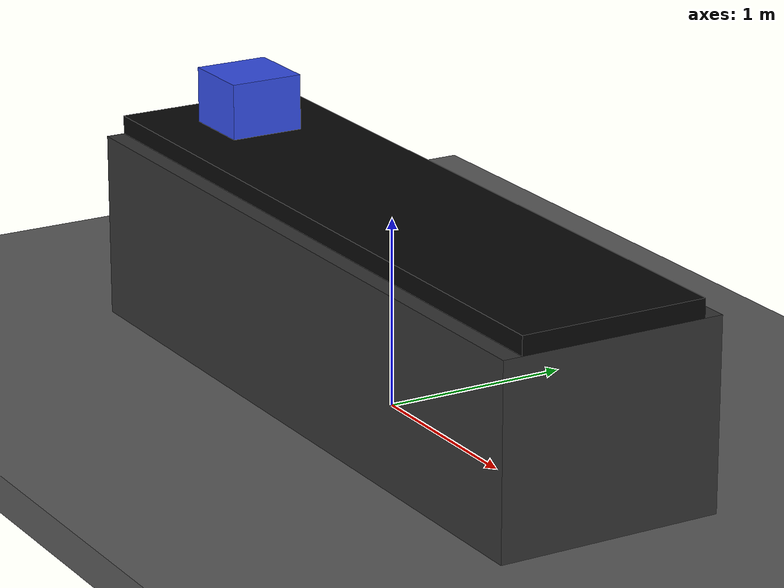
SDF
<?xml version="1.0"?>
<sdf version="1.9">
  <world name="virtual_factory">

    <!-- ============================================================
         PHYSICS
         ============================================================ -->

    <physics name="default_physics" type="ode">
      <max_step_size>0.001</max_step_size>
      <real_time_factor>1</real_time_factor>
      <real_time_update_rate>1000</real_time_update_rate>
    </physics>

    <!-- ============================================================
         LIGHTING
         ============================================================ -->

    <light
      name="sun"
      type="directional">

      <cast_shadows>true</cast_shadows>

      <pose>0 0 10 0 0 0</pose>

      <diffuse>0.8 0.8 0.8 1</diffuse>

      <specular>0.2 0.2 0.2 1</specular>

      <direction>-0.5 0.1 -0.9</direction>

    </light>

    <!-- ============================================================
         FACTORY FLOOR
         ============================================================ -->

    <model name="factory_floor">

      <!-- The factory floor does not move -->
      <static>true</static>

      <pose>0 0 0 0 0 0</pose>

      <link name="floor_link">

        <!-- ======================================================
             VISUAL
             What we see
             ====================================================== -->

        <visual name="floor_visual">

          <geometry>

            <box>
              <size>20 20 0.2</size>
            </box>

          </geometry>

	<material>
    <ambient>0.25 0.25 0.25 1</ambient>
    <diffuse>0.35 0.35 0.35 1</diffuse>
    <specular>0.1 0.1 0.1 1</specular>
  </material>

          <pose>0 0 -0.1 0 0 0</pose>

        </visual>

        <!-- ======================================================
             COLLISION
             What the physics engine sees
             ====================================================== -->

        <collision name="floor_collision">

          <geometry>

            <box>
              <size>20 20 0.2</size>
            </box>

          </geometry>

          <pose>0 0 -0.1 0 0 0</pose>

        </collision>

      </link>

    </model>

    <!-- ============================================================
         CONVEYOR CV-001
         ============================================================ -->

    <include>

      <uri>model://conveyor</uri>

      <name>CV-001</name>

      <pose>0 0 0 0 0 0</pose>

    </include>

<!-- =========================================================
     PRODUCT-001
     ========================================================= -->

<include>

  <uri>model://product</uri>

  <name>PRODUCT-001</name>

  <!--
    X = -1.5 m
    Y =  0 m
    Z =  1.25 m

    Product is near the conveyor start,
    centered across the belt,
    and sitting on top of it.
  -->

  <pose>-1.5 0 1.25 0 0 0</pose>

</include>

  </world>
</sdf>

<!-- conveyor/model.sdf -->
<sdf version="1.9">

  <!-- =========================================================
       CONVEYOR MODEL
       Equipment ID: CV-001
       ========================================================= -->

  <model name="CV-001">

<static>true</static>

    <link name="frame">

      <pose>0 0 0.5 0 0 0</pose>

      <visual name="frame_visual">

        <geometry>

          <box>
            <size>4.0 1.2 1.0</size>
          </box>

        </geometry>
	<material>
    <ambient>0.12 0.12 0.12 1</ambient>
    <diffuse>0.20 0.20 0.20 1</diffuse>
    <specular>0.35 0.35 0.35 1</specular>
  </material>
      </visual>

      <collision name="frame_collision">

        <geometry>

          <box>
            <size>4.0 1.2 1.0</size>
          </box>

        </geometry>

      </collision>

    </link>

    <link name="belt">

      <pose>0 0 1.05 0 0 0</pose>

      <visual name="belt_visual">

        <geometry>

          <box>
            <size>4.0 1.0 0.1</size>
          </box>

        </geometry>
	<material>
    <ambient>0.01 0.01 0.01 1</ambient>
    <diffuse>0.03 0.03 0.03 1</diffuse>
    <specular>0.05 0.05 0.05 1</specular>
  </material>
      </visual>

      <collision name="belt_collision">

        <geometry>

          <box>
            <size>4.0 1.0 0.1</size>
          </box>

        </geometry>

      </collision>

    </link>

    <plugin
        filename="libConveyorSystem.so"
        name="virtual_factory::ConveyorSystem">
    </plugin>

  </model>

</sdf>

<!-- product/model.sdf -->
<sdf version="1.9">

  <model name="PRODUCT-001">

    <link name="body">

      <pose>0 0 0 0 0 0</pose>

      <!-- =======================================================
           VISUAL
           ======================================================= -->

      <visual name="body_visual">

        <geometry>

          <box>
            <size>0.4 0.4 0.3</size>
          </box>

        </geometry>

        <!-- Product appearance -->

        <material>

          <ambient>0.15 0.15 0.8 1</ambient>

          <diffuse>0.2 0.3 0.9 1</diffuse>

          <specular>0.4 0.4 0.4 1</specular>

        </material>

      </visual>

      <collision name="body_collision">

        <geometry>

          <box>
            <size>0.4 0.4 0.3</size>
          </box>

        </geometry>

      </collision>

    </link>

  </model>

</sdf>
